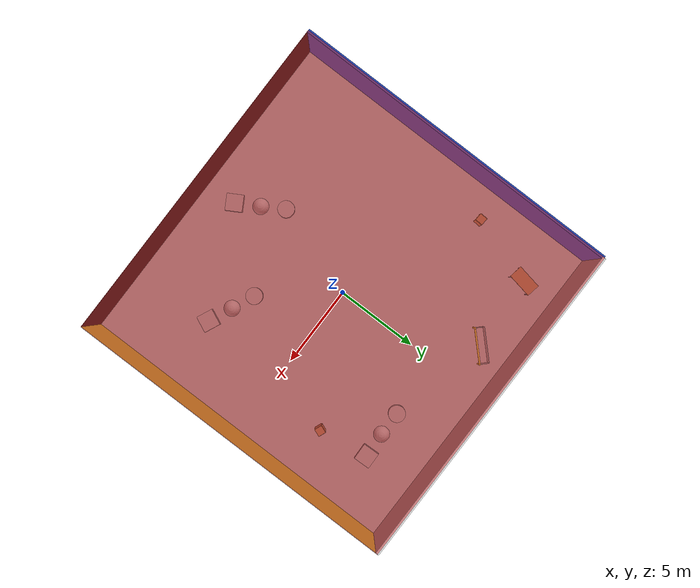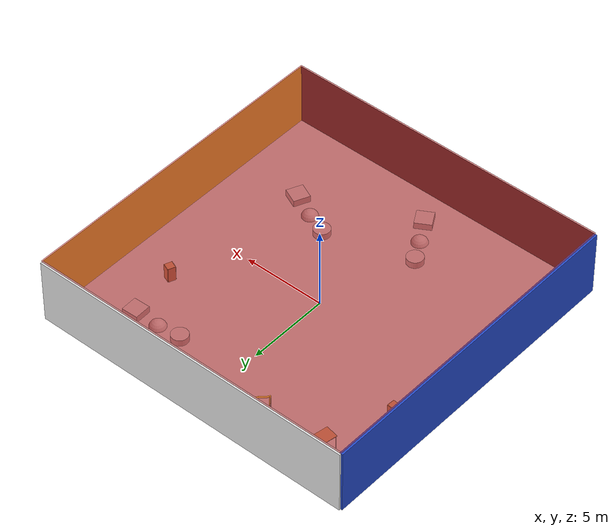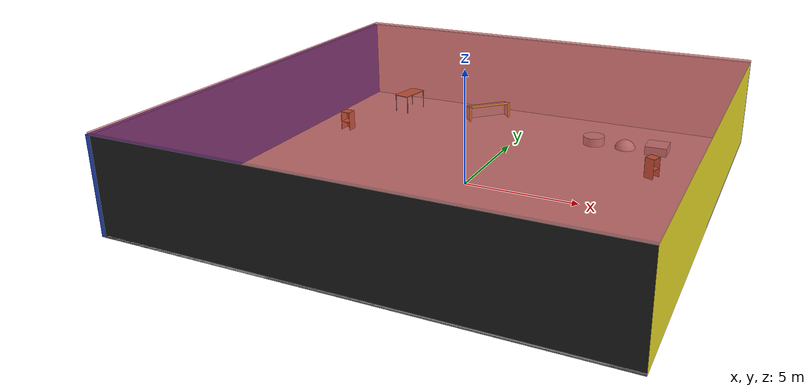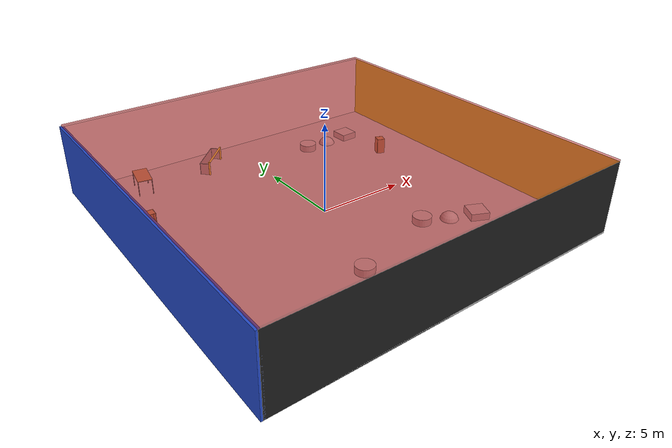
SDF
<sdf version="1.4">
 <world name="default">
  <physics type="ode">
   <max_step_size>0.001</max_step_size>
   <real_time_factor>1</real_time_factor>
   <real_time_update_rate>1000</real_time_update_rate>
   <gravity>0 0 -9.8</gravity>
  </physics>
  <scene><ambient>0.4 0.4 0.4 1</ambient><background>0.7 0.7 0.7 1</background><shadows>1</shadows></scene>
  <model name="Surrounding">
   <static>1</static>
   <link name="Ceiling">
    <collision name="Ceiling_Collision"><geometry><box><size>20 20 0.1</size></box></geometry></collision>
    <visual name="Ceiling_Visual">
     <geometry><box><size>20 20 0.1</size></box></geometry>
     <material>
      <script><uri>file://media/materials/scripts/gazebo.material</uri><name>Gazebo/RedTransparent</name></script>
     </material>
    </visual>
    <pose>0 0 4.05 0 0 0</pose>
   </link>
   <link name="Wall_South">
    <collision name="Wall_South_Collision">
     <geometry><box><size>20 0 4</size></box></geometry>
     <pose>0 0 2 0 -0 0</pose>
    </collision>
    <visual name="Wall_South_Visual">
     <pose>0 0 2 0 -0 0</pose>
     <geometry><box><size>20 0 4</size></box></geometry>
     <material>
      <script><uri>file://media/materials/scripts/gazebo.material</uri><name>Gazebo/FlatBlack</name></script>
     </material>
    </visual>
    <velocity_decay><linear>0</linear><angular>0</angular></velocity_decay>
    <pose>0 -10 0 0 -0 0</pose>
   </link>
   <link name="Wall_East">
    <collision name="Wall_21_Collision">
     <geometry><box><size>20 0 4</size></box></geometry>
     <pose>0 0 2 0 -0 0</pose>
    </collision>
    <visual name="Wall_21_Visual">
     <pose>0 0 2 0 -0 0</pose>
     <geometry><box><size>20 0 4</size></box></geometry>
     <material>
      <script><uri>file://media/materials/scripts/gazebo.material</uri><name>Gazebo/YellowGlow</name></script>
     </material>
    </visual>
    <velocity_decay><linear>0</linear><angular>0</angular></velocity_decay>
    <pose>10 0 0 0 -0 1.5708</pose>
   </link>
   <link name="Wall_North">
    <collision name="Wall_22_Collision">
     <geometry><box><size>20 0.2 4</size></box></geometry>
     <pose>0 0 2 0 -0 0</pose>
    </collision>
    <visual name="Wall_22_Visual">
     <pose>0 0 2 0 -0 0</pose>
     <geometry><box><size>20 0.2 4</size></box></geometry>
     <material>
      <script><uri>file://media/materials/scripts/gazebo.material</uri><name>Gazebo/White</name></script>
     </material>
    </visual>
    <velocity_decay><linear>0</linear><angular>0</angular></velocity_decay>
    <pose>0 10 0 0 -0 0</pose>
   </link>
   <link name="Wall_West">
    <collision name="Wall_23_Collision">
     <geometry><box><size>20 0.2 4</size></box></geometry>
     <pose>0 0 2 0 -0 0</pose>
    </collision>
    <visual name="Wall_23_Visual">
     <pose>0 0 2 0 -0 0</pose>
     <geometry><box><size>20 0.2 4</size></box></geometry>
     <material>
      <script><uri>file://media/materials/scripts/gazebo.material</uri><name>Gazebo/BlueGlow</name></script>
     </material>
    </visual>
    <velocity_decay><linear>0</linear><angular>0</angular></velocity_decay>
    <pose>-10 0 0 0 0 -1.5708</pose>
   </link>
   <link name="Ground_link">
    <collision name="collision">
     <pose>0 0 .05 0 -0 0</pose>
     <geometry><box><size>20 20 0.1</size></box></geometry>
    </collision>
    <visual name="visual">
     <pose>0 0 .05 0 -0 0</pose>
     <geometry><box><size>20 20 0.1</size></box></geometry>
     <material>
      <script><uri>file://media/materials/scripts/gazebo.material</uri><name>Gazebo/LightOn</name></script>
     </material>
    </visual>
   </link>
   <static>1</static>
  </model>
  <spherical_coordinates>
   <surface_model>EARTH_WGS84</surface_model>
   <latitude_deg>0</latitude_deg>
   <longitude_deg>0</longitude_deg>
   <elevation>0</elevation>
   <heading_deg>0</heading_deg>
  </spherical_coordinates>
  <light name="lightball_0" type="diffuse">
   <diffuse>0.8 0.8 0.8 1</diffuse>
   <specular>0.2 0.2 0.2 1</specular>
   <attenuation>
    <range>100</range>
    <constant>0.7</constant>
    <linear>0.01</linear>
    <quadratic>0.001</quadratic>
   </attenuation>
   <direction>-0.5 0.1 -0.9</direction>
   <pose>-8.62937589805 -3.38972819798 1.09022693576 0 0 0</pose>
  </light>
  <light name="lightball_1" type="diffuse">
   <diffuse>0.8 0.8 0.8 1</diffuse>
   <specular>0.2 0.2 0.2 1</specular>
   <attenuation>
    <range>100</range>
    <constant>0.7</constant>
    <linear>0.01</linear>
    <quadratic>0.001</quadratic>
   </attenuation>
   <direction>-0.5 0.1 -0.9</direction>
   <pose>7.55365687544 5.70034308121 2.56504577234 0 0 0</pose>
  </light>
  <light name="lightball_2" type="diffuse">
   <diffuse>0.8 0.8 0.8 1</diffuse>
   <specular>0.2 0.2 0.2 1</specular>
   <attenuation>
    <range>100</range>
    <constant>0.7</constant>
    <linear>0.01</linear>
    <quadratic>0.001</quadratic>
   </attenuation>
   <direction>-0.5 0.1 -0.9</direction>
   <pose>1.03956113369 -5.09650954525 1.35194291213 0 0 0</pose>
  </light>
  <light name="lightball_3" type="diffuse">
   <diffuse>0.8 0.8 0.8 1</diffuse>
   <specular>0.2 0.2 0.2 1</specular>
   <attenuation>
    <range>100</range>
    <constant>0.7</constant>
    <linear>0.01</linear>
    <quadratic>0.001</quadratic>
   </attenuation>
   <direction>-0.5 0.1 -0.9</direction>
   <pose>-0.526179414082 0.425050122229 2.66481090185 0 0 0</pose>
  </light>
  <light name="lightball_4" type="diffuse">
   <diffuse>0.8 0.8 0.8 1</diffuse>
   <specular>0.2 0.2 0.2 1</specular>
   <attenuation>
    <range>100</range>
    <constant>0.7</constant>
    <linear>0.01</linear>
    <quadratic>0.001</quadratic>
   </attenuation>
   <direction>-0.5 0.1 -0.9</direction>
   <pose>-1.29033377777 -6.03700132529 2.67924670386 0 0 0</pose>
  </light>
  <light name="lightball_5" type="diffuse">
   <diffuse>0.8 0.8 0.8 1</diffuse>
   <specular>0.2 0.2 0.2 1</specular>
   <attenuation>
    <range>100</range>
    <constant>0.7</constant>
    <linear>0.01</linear>
    <quadratic>0.001</quadratic>
   </attenuation>
   <direction>-0.5 0.1 -0.9</direction>
   <pose>0.932871159344 -5.1171458621 0.626897674691 0 0 0</pose>
  </light>
  <light name="lightball_6" type="diffuse">
   <diffuse>0.8 0.8 0.8 1</diffuse>
   <specular>0.2 0.2 0.2 1</specular>
   <attenuation>
    <range>100</range>
    <constant>0.7</constant>
    <linear>0.01</linear>
    <quadratic>0.001</quadratic>
   </attenuation>
   <direction>-0.5 0.1 -0.9</direction>
   <pose>-2.49240117157 4.70593225457 1.88053281278 0 0 0</pose>
  </light>
  <light name="lightball_7" type="diffuse">
   <diffuse>0.8 0.8 0.8 1</diffuse>
   <specular>0.2 0.2 0.2 1</specular>
   <attenuation>
    <range>100</range>
    <constant>0.7</constant>
    <linear>0.01</linear>
    <quadratic>0.001</quadratic>
   </attenuation>
   <direction>-0.5 0.1 -0.9</direction>
   <pose>-5.97815740451 -8.44039545735 3.81624279692 0 0 0</pose>
  </light>
  <light name="lightball_8" type="diffuse">
   <diffuse>0.8 0.8 0.8 1</diffuse>
   <specular>0.2 0.2 0.2 1</specular>
   <attenuation>
    <range>100</range>
    <constant>0.7</constant>
    <linear>0.01</linear>
    <quadratic>0.001</quadratic>
   </attenuation>
   <direction>-0.5 0.1 -0.9</direction>
   <pose>6.64509866726 0.88695123541 0.554545987976 0 0 0</pose>
  </light>
  <light name="lightball_9" type="diffuse">
   <diffuse>0.8 0.8 0.8 1</diffuse>
   <specular>0.2 0.2 0.2 1</specular>
   <attenuation>
    <range>100</range>
    <constant>0.7</constant>
    <linear>0.01</linear>
    <quadratic>0.001</quadratic>
   </attenuation>
   <direction>-0.5 0.1 -0.9</direction>
   <pose>1.54810918141 2.59387984168 0.623402462209 0 0 0</pose>
  </light>
  <light name="lightball_10" type="diffuse">
   <diffuse>0.8 0.8 0.8 1</diffuse>
   <specular>0.2 0.2 0.2 1</specular>
   <attenuation>
    <range>100</range>
    <constant>0.7</constant>
    <linear>0.01</linear>
    <quadratic>0.001</quadratic>
   </attenuation>
   <direction>-0.5 0.1 -0.9</direction>
   <pose>6.28233028788 0.515980565535 2.1907508918 0 0 0</pose>
  </light>
  <include><uri>model://cabinet</uri><pose>-8.10875508995 3.72419443006 0 0 0 1.50017411892</pose></include>
  <include><uri>model://table</uri><pose>-6.80430382666 7.81700496619 0 0 0 1.39107218295</pose></include>
  <include>
   <uri>model://textured_shapes</uri>
   <pose>-1.05393587558 -6.81109159762 0 0 0 0.527518960337</pose>
  </include>
  <include>
   <uri>model://robocup_3Dsim_goal</uri>
   <pose>-2.23206993152 7.97274694528 0 0 0 2.35375526331</pose>
  </include>
  <include>
   <uri>model://textured_shapes</uri>
   <pose>4.64493918272 -4.54344751751 0 0 0 1.14985804151</pose>
  </include>
  <include>
   <uri>model://textured_shapes</uri>
   <pose>5.15358052232 6.77130205019 0 0 0 1.60248085618</pose>
  </include>
  <include><uri>model://cabinet</uri><pose>7.06105503406 3.77564290155 0 0 0 2.76896189359</pose></include>
 </world>
</sdf>

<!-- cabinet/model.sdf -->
<sdf version="1.5">
  <model name="cabinet">
    <static>true</static>
    <link name="cabinet_bottom_plate">
      <inertial>
        <pose>0 0 -1 0 0 0</pose>
        <inertia>
          <ixx>2.050000</ixx>
          <ixy>0</ixy>
          <ixz>0</ixz>
          <iyy>2.050000</iyy>
          <iyz>0</iyz>
          <izz>2.050000</izz>
        </inertia>
        <mass>25.000000</mass>
      </inertial>
      <collision name="cabinet_bottom_plate_geom">
        <pose>0 0 0.010000 0 0 0</pose>
        <geometry>
          <box>
            <size>0.450000 0.450000 0.020000</size>
          </box>
        </geometry>
      </collision>
      <visual name="cabinet_bottom_plate_geom_visual">
        <pose>0 0 0.010000 0 0 0</pose>
        <geometry>
          <box>
            <size>0.450000 0.450000 0.020000</size>
          </box>
        </geometry>
        <material>
          <script>
            <uri>model://media/materials/scripts/gazebo.material</uri>
            <name>Gazebo/Wood</name>
          </script>
        </material>
      </visual>
      <collision name="cabinet_bottom_plate_geom_cabinet_back_plate">
        <pose>0.235000 0 0.510000 0 0 0</pose>
        <geometry>
          <box>
            <size>0.020000 0.450000 1.020000</size>
          </box>
        </geometry>
      </collision>
      <visual name="cabinet_bottom_plate_geom_cabinet_back_plate_visual">
        <pose>0.235000 0 0.510000 0 0 0</pose>
        <geometry>
          <box>
            <size>0.020000 0.450000 1.020000</size>
          </box>
        </geometry>
        <material>
          <script>
            <uri>model://media/materials/scripts/gazebo.material</uri>
            <name>Gazebo/Wood</name>
          </script>
        </material>
      </visual>
      <collision name="cabinet_bottom_plate_geom_cabinet_left_plate">
        <pose>0 0.235000 0.510000 0 0 0</pose>
        <geometry>
          <box>
            <size>0.450000 0.020000 1.020000</size>
          </box>
        </geometry>
      </collision>
      <visual name="cabinet_bottom_plate_geom_cabinet_left_plate_visual">
        <pose>0 0.235000 0.510000 0 0 0</pose>
        <geometry>
          <box>
            <size>0.450000 0.020000 1.020000</size>
          </box>
        </geometry>
        <material>
          <script>
            <uri>model://media/materials/scripts/gazebo.material</uri>
            <name>Gazebo/Wood</name>
          </script>
        </material>
      </visual>
      <collision name="cabinet_bottom_plate_geom_cabinet_middle_plate">
        <pose>0 0 0.510000 0 0 0</pose>
        <geometry>
          <box>
            <size>0.450000 0.450000 0.020000</size>
          </box>
        </geometry>
      </collision>
      <visual name="cabinet_bottom_plate_geom_cabinet_middle_plate_visual">
        <pose>0 0 0.510000 0 0 0</pose>
        <geometry>
          <box>
            <size>0.450000 0.450000 0.020000</size>
          </box>
        </geometry>
        <material>
          <script>
            <uri>model://media/materials/scripts/gazebo.material</uri>
            <name>Gazebo/Wood</name>
          </script>
        </material>
      </visual>
      <collision name="cabinet_bottom_plate_geom_cabinet_right_plate">
        <pose>0 -0.235000 0.510000 0 0 0</pose>
        <geometry>
          <box>
            <size>0.450000 0.020000 1.020000</size>
          </box>
        </geometry>
      </collision>
      <visual name="cabinet_bottom_plate_geom_cabinet_right_plate_visual">
        <pose>0 -0.235000 0.510000 0 0 0</pose>
        <geometry>
          <box>
            <size>0.450000 0.020000 1.020000</size>
          </box>
        </geometry>
        <material>
          <script>
            <uri>model://media/materials/scripts/gazebo.material</uri>
            <name>Gazebo/Wood</name>
          </script>
        </material>
      </visual>
      <collision name="cabinet_bottom_plate_geom_cabinet_top_plate">
        <pose>0 0 1.010000 0 0 0</pose>
        <geometry>
          <box>
            <size>0.450000 0.450000 0.020000</size>
          </box>
        </geometry>
      </collision>
      <visual name="cabinet_bottom_plate_geom_cabinet_top_plate_visual">
        <pose>0 0 1.010000 0 0 0</pose>
        <geometry>
          <box>
            <size>0.450000 0.450000 0.020000</size>
          </box>
        </geometry>
        <material>
          <script>
            <uri>model://media/materials/scripts/gazebo.material</uri>
            <name>Gazebo/Wood</name>
          </script>
        </material>
      </visual>
    </link>
  </model>
</sdf>

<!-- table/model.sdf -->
<sdf version="1.5">
  <model name="table">
    <static>true</static>
    <link name="link">
      <collision name="surface">
        <pose>0 0 1.0 0 0 0</pose>
        <geometry>
          <box>
            <size>1.5 0.8 0.03</size>
          </box>
        </geometry>
        <surface>
          <friction>
            <ode>
              <mu>0.6</mu>
              <mu2>0.6</mu2>
            </ode>
          </friction>
        </surface>
      </collision>
      <visual name="visual1">
        <pose>0 0 1.0 0 0 0</pose>
        <geometry>
          <box>
            <size>1.5 0.8 0.03</size>
          </box>
        </geometry>
        <material>
          <script>
            <uri>model://media/materials/scripts/gazebo.material</uri>
            <name>Gazebo/Wood</name>
          </script>
        </material>
      </visual>
      <collision name="front_left_leg">
        <pose>0.68 0.38 0.5 0 0 0</pose>
        <geometry>
          <cylinder>
            <radius>0.02</radius>
            <length>1.0</length>
          </cylinder>
        </geometry>
      </collision>
      <visual name="front_left_leg">
        <pose>0.68 0.38 0.5 0 0 0</pose>
        <geometry>
          <cylinder>
            <radius>0.02</radius>
            <length>1.0</length>
          </cylinder>
        </geometry>
        <material>
          <script>
            <uri>model://media/materials/scripts/gazebo.material</uri>
            <name>Gazebo/Grey</name>
          </script>
        </material>
      </visual>
      <collision name="front_right_leg">
        <pose>0.68 -0.38 0.5 0 0 0</pose>
        <geometry>
          <cylinder>
            <radius>0.02</radius>
            <length>1.0</length>
          </cylinder>
        </geometry>
      </collision>
      <visual name="front_right_leg">
        <pose>0.68 -0.38 0.5 0 0 0</pose>
        <geometry>
          <cylinder>
            <radius>0.02</radius>
            <length>1.0</length>
          </cylinder>
        </geometry>
        <material>
          <script>
            <uri>model://media/materials/scripts/gazebo.material</uri>
            <name>Gazebo/Grey</name>
          </script>
        </material>
      </visual>
      <collision name="back_right_leg">
        <pose>-0.68 -0.38 0.5 0 0 0</pose>
        <geometry>
          <cylinder>
            <radius>0.02</radius>
            <length>1.0</length>
          </cylinder>
        </geometry>
      </collision>
      <visual name="back_right_leg">
        <pose>-0.68 -0.38 0.5 0 0 0</pose>
        <geometry>
          <cylinder>
            <radius>0.02</radius>
            <length>1.0</length>
          </cylinder>
        </geometry>
        <material>
          <script>
            <uri>model://media/materials/scripts/gazebo.material</uri>
            <name>Gazebo/Grey</name>
          </script>
        </material>
      </visual>
      <collision name="back_left_leg">
        <pose>-0.68 0.38 0.5 0 0 0</pose>
        <geometry>
          <cylinder>
            <radius>0.02</radius>
            <length>1.0</length>
          </cylinder>
        </geometry>
      </collision>
      <visual name="back_left_leg">
        <pose>-0.68 0.38 0.5 0 0 0</pose>
        <geometry>
          <cylinder>
            <radius>0.02</radius>
            <length>1.0</length>
          </cylinder>
        </geometry>
        <material>
          <script>
            <uri>model://media/materials/scripts/gazebo.material</uri>
            <name>Gazebo/Grey</name>
          </script>
        </material>
      </visual>
    </link>
  </model>
</sdf>

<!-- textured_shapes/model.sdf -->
<sdf version="1.6">
  <model name="textured_shapes">
    <pose>0 0 0.5 0 0 0</pose>
    <link name="box">
      <pose>0 -1.5 0 0 0 0</pose>
      <collision name="collision">
        <geometry>
          <box>
            <size>1 1 1</size>
          </box>
        </geometry>
      </collision>
      <visual name="visual">
        <geometry>
          <box>
            <size>1 1 1</size>
          </box>
        </geometry>
        <material>
          <script>
            <uri>model://../model_source/models/textured_shapes/materials/scripts</uri>
            <uri>model://../model_source/models/textured_shapes/materials/textures</uri>
            <name>TexturedShape/Squares</name>
          </script>
        </material>
      </visual>
    </link>
    <link name="sphere">
      <collision name="collision">
        <geometry>
          <sphere>
            <radius>0.5</radius>
          </sphere>
        </geometry>
      </collision>
      <visual name="visual">
        <geometry>
          <sphere>
            <radius>0.5</radius>
          </sphere>
        </geometry>
        <material>
          <script>
            <uri>model://../model_source/models/textured_shapes/materials/scripts</uri>
            <uri>model://../model_source/models/textured_shapes/materials/textures</uri>
            <name>TexturedShape/Squares</name>
          </script>
        </material>
      </visual>
    </link>
    <link name="cylinder">
      <pose>0 1.5 0 0 0 0</pose>
      <collision name="collision">
        <geometry>
          <cylinder>
            <radius>0.5</radius>
            <length>1</length>
          </cylinder>
        </geometry>
      </collision>
      <visual name="visual">
        <geometry>
          <cylinder>
            <radius>0.5</radius>
            <length>1</length>
          </cylinder>
        </geometry>
        <material>
          <script>
            <uri>model://../model_source/models/textured_shapes/materials/scripts</uri>
            <uri>model://../model_source/models/textured_shapes/materials/textures</uri>
            <name>TexturedShape/Squares</name>
          </script>
        </material>
      </visual>
    </link>
  </model>
</sdf>

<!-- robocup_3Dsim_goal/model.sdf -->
<sdf version="1.5">
  <model name="robocup_3d_goal">
    <static>true</static>
    <link name="left_post">
      <pose>0 1.05 0.45 0 0 0</pose>
      <collision name="collision">
        <geometry>
          <cylinder>
            <radius>0.05</radius>
            <length>0.9</length>
          </cylinder>
        </geometry>
      </collision>
      <visual name="visual">
        <geometry>
          <cylinder>
            <radius>0.05</radius>
            <length>0.9</length>
          </cylinder>
        </geometry>
        <material>
          <script>
            <uri>file://media/materials/scripts/gazebo.material</uri>
            <name>Gazebo/ZincYellow</name>
          </script>
        </material>
      </visual>
    </link>
    <link name="left_support_horiz_lower">
      <pose>0.30 1.05 0.01 0 0 0</pose>
      <collision name="collision">
        <geometry>
          <box>
            <size>0.50 0.02 0.02</size>
          </box>
        </geometry>
      </collision>
      <visual name="visual">
        <geometry>
          <box>
            <size>0.50 0.02 0.02</size>
          </box>
        </geometry>
        <material>
          <script>
            <uri>file://media/materials/scripts/gazebo.material</uri>
            <name>Gazebo/White</name>
          </script>
        </material>
      </visual>
    </link>
    <link name="left_support_horiz_upper">
      <pose>0.30 1.05 0.79 0 0 0</pose>
      <collision name="collision">
        <geometry>
          <box>
            <size>0.50 0.02 0.02</size>
          </box>
        </geometry>
      </collision>
      <visual name="visual">
        <geometry>
          <box>
            <size>0.50 0.02 0.02</size>
          </box>
        </geometry>
        <material>
          <script>
            <uri>file://media/materials/scripts/gazebo.material</uri>
            <name>Gazebo/White</name>
          </script>
        </material>
      </visual>
    </link>
    <link name="left_support_vertical">
      <pose>0.56 1.05 0.4 0 1.5708 0</pose>
      <collision name="collision">
        <geometry>
          <box>
            <size>0.80 0.02 0.02</size>
          </box>
        </geometry>
      </collision>
      <visual name="visual">
        <geometry>
          <box>
            <size>0.80 0.02 0.02</size>
          </box>
        </geometry>
        <material>
          <script>
            <uri>file://media/materials/scripts/gazebo.material</uri>
            <name>Gazebo/White</name>
          </script>
        </material>
      </visual>
    </link>
    <link name="right_support_horiz_lower">
      <pose>0.30 -1.05 0.01 0 0 0</pose>
      <collision name="collision">
        <geometry>
          <box>
            <size>0.50 0.02 0.02</size>
          </box>
        </geometry>
      </collision>
      <visual name="visual">
        <geometry>
          <box>
            <size>0.50 0.02 0.02</size>
          </box>
        </geometry>
        <material>
          <script>
            <uri>file://media/materials/scripts/gazebo.material</uri>
            <name>Gazebo/White</name>
          </script>
        </material>
      </visual>
    </link>
    <link name="right_support_horiz_upper">
      <pose>0.30 -1.05 0.79 0 0 0</pose>
      <collision name="collision">
        <geometry>
          <box>
            <size>0.50 0.02 0.02</size>
          </box>
        </geometry>
      </collision>
      <visual name="visual">
        <geometry>
          <box>
            <size>0.50 0.02 0.02</size>
          </box>
        </geometry>
        <material>
          <script>
            <uri>file://media/materials/scripts/gazebo.material</uri>
            <name>Gazebo/White</name>
          </script>
        </material>
      </visual>
    </link>
    <link name="right_support_vertical">
      <pose>0.56 -1.05 0.4 0 1.5708 0</pose>
      <collision name="collision">
        <geometry>
          <box>
            <size>0.80 0.02 0.02</size>
          </box>
        </geometry>
      </collision>
      <visual name="visual">
        <geometry>
          <box>
            <size>0.80 0.02 0.02</size>
          </box>
        </geometry>
        <material>
          <script>
            <uri>file://media/materials/scripts/gazebo.material</uri>
            <name>Gazebo/White</name>
          </script>
        </material>
      </visual>
    </link>
    <link name="center_support_horiz_lower">
      <pose>0.56 0 0.01 0 1.5708 0</pose>
      <collision name="collision">
        <geometry>
          <box>
            <size>0.02 2.08 0.02</size>
          </box>
        </geometry>
      </collision>
      <visual name="visual">
        <geometry>
          <box>
            <size>0.02 2.08 0.02</size>
          </box>
        </geometry>
        <material>
          <script>
            <uri>file://media/materials/scripts/gazebo.material</uri>
            <name>Gazebo/White</name>
          </script>
        </material>
      </visual>
    </link>
    <link name="center_support_horiz_upper">
      <pose>0.56 0 0.79 0 1.5708 0</pose>
      <collision name="collision">
        <geometry>
          <box>
            <size>0.02 2.08 0.02</size>
          </box>
        </geometry>
      </collision>
      <visual name="visual">
        <geometry>
          <box>
            <size>0.02 2.08 0.02</size>
          </box>
        </geometry>
        <material>
          <script>
            <uri>file://media/materials/scripts/gazebo.material</uri>
            <name>Gazebo/White</name>
          </script>
        </material>
      </visual>
    </link>
    <link name="right_post">
      <pose>0 -1.05 0.45 0 0 0</pose>
      <collision name="collision">
        <geometry>
          <cylinder>
            <radius>0.05</radius>
            <length>0.9</length>
          </cylinder>
        </geometry>
      </collision>
      <visual name="visual">
        <geometry>
          <cylinder>
            <radius>0.05</radius>
            <length>0.9</length>
          </cylinder>
        </geometry>
        <material>
          <script>
            <uri>file://media/materials/scripts/gazebo.material</uri>
            <name>Gazebo/ZincYellow</name>
          </script>
        </material>
      </visual>
    </link>
    <link name="crossbar">
      <pose>0 0 0.85 1.57 1.57 0</pose>
      <collision name="collision">
        <geometry>
          <cylinder>
            <radius>0.05</radius>
            <length>2.0</length>
          </cylinder>
        </geometry>
      </collision>
      <visual name="visual">
        <geometry>
          <cylinder>
            <radius>0.05</radius>
            <length>2.0</length>
          </cylinder>
        </geometry>
        <material>
          <script>
            <uri>file://media/materials/scripts/gazebo.material</uri>
            <name>Gazebo/ZincYellow</name>
          </script>
        </material>
      </visual>
    </link>
    <link name="center_net">
      <pose>0.56 0 0.40 0 0 0</pose>
      <collision name="collision">
        <geometry>
          <box>
            <size>0.01 2.1 0.80</size>
          </box>
        </geometry>
      </collision>
      <visual name="visual">
        <geometry>
          <box>
            <size>0.01 2.1 0.80</size>
          </box>
        </geometry>
        <material>
          <script>
            <uri>model://../model_source/models/robocup09_spl_field/materials/scripts/</uri>
            <uri>model://../model_source/models/robocup09_spl_field/materials/textures/</uri>
            <name>RoboCup/Net</name>
          </script>
        </material>
      </visual>
    </link>
    <link name="left_net">
      <pose>0.30 1.05 0.40 0 0 0</pose>
      <collision name="collision">
        <geometry>
          <box>
            <size>0.50 0.01 0.76</size>
          </box>
        </geometry>
      </collision>
      <visual name="visual">
        <geometry>
          <box>
            <size>0.50 0.01 0.76</size>
          </box>
        </geometry>
        <material>
          <script>
            <uri>model://../model_source/models/robocup09_spl_field/materials/scripts/</uri>
            <uri>model://../model_source/models/robocup09_spl_field/materials/textures/</uri>
            <name>RoboCup/Net</name>
          </script>
        </material>
      </visual>
    </link>
    <link name="right_net">
      <pose>0.30 -1.05 0.40 0 0 0</pose>
      <collision name="collision">
        <geometry>
          <box>
            <size>0.50 0.01 0.76</size>
          </box>
        </geometry>
      </collision>
      <visual name="visual">
        <geometry>
          <box>
            <size>0.50 0.01 0.76</size>
          </box>
        </geometry>
        <material>
          <script>
            <uri>model://../model_source/models/robocup09_spl_field/materials/scripts/</uri>
            <uri>model://../model_source/models/robocup09_spl_field/materials/textures/</uri>
            <name>RoboCup/Net</name>
          </script>
        </material>
      </visual>
    </link>
  </model>
</sdf>
